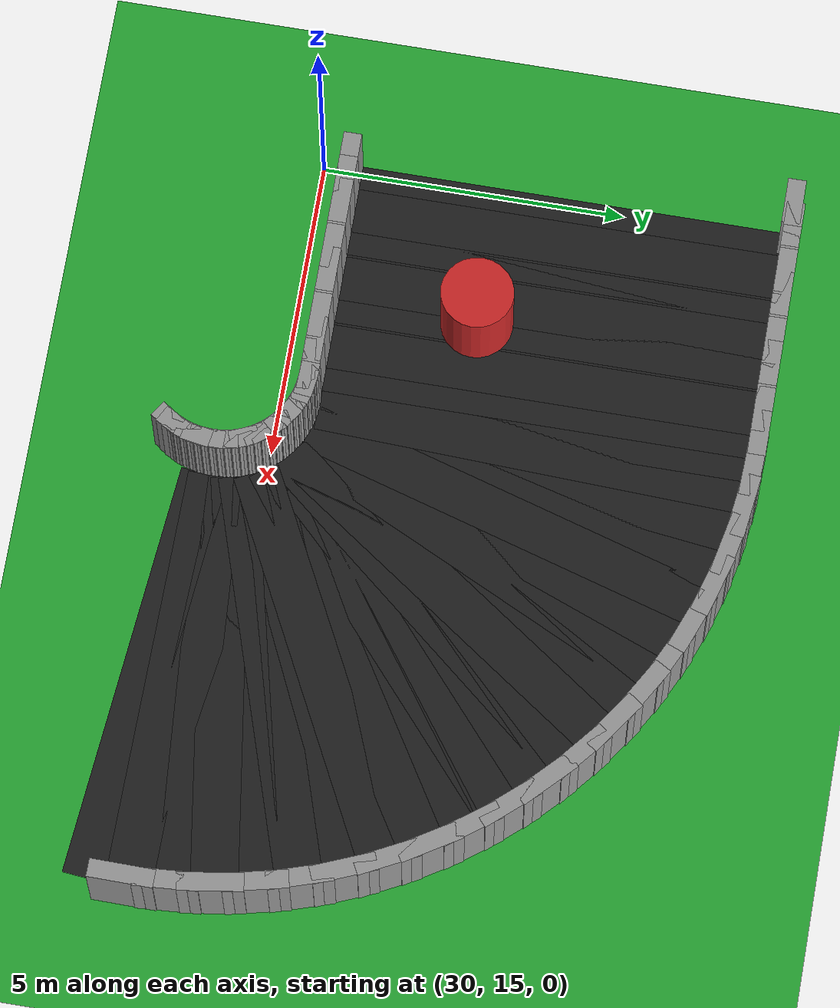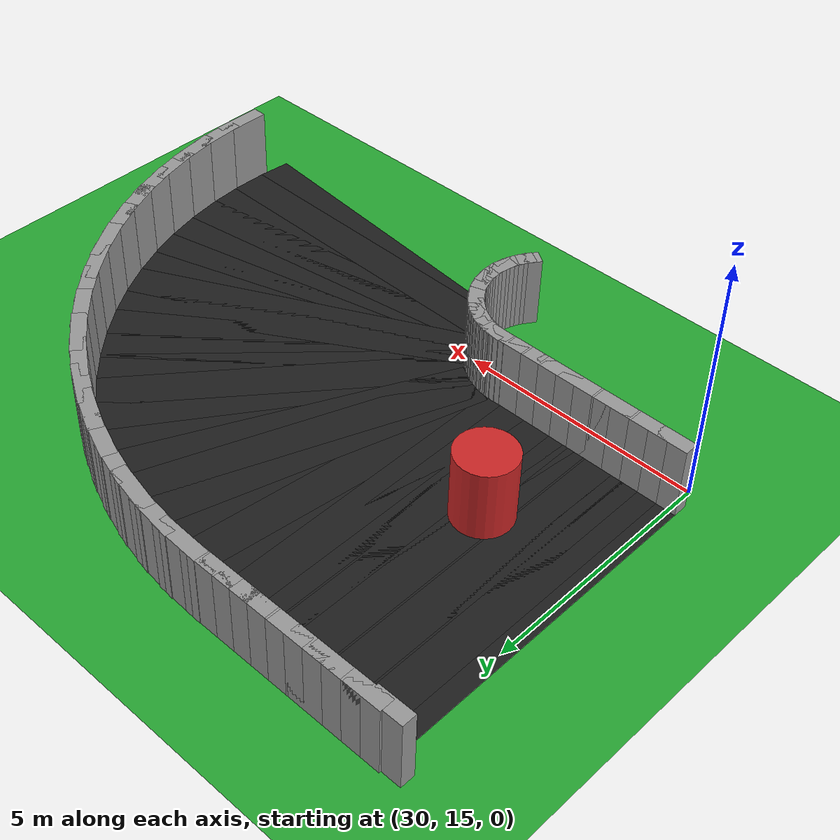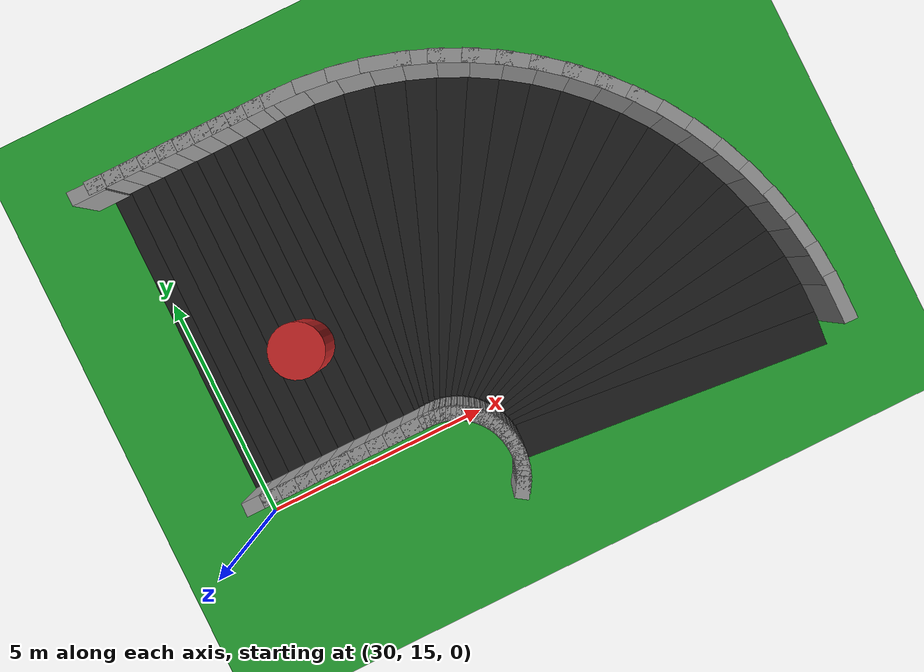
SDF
<sdf version="1.6">
 <world name="obstacle_taper">
  <include><uri>model://sun</uri></include>
  <model name="ground_plane">
   <static>true</static>
   <link name="link">
    <collision name="collision">
     <surface><friction><ode><mu>100</mu><mu2>50</mu2></ode></friction></surface>
     <geometry><plane><normal>0 0 1</normal><size>120 120</size></plane></geometry>
    </collision>
    <visual name="visual">
     <geometry><plane><normal>0 0 1</normal><size>120 120</size></plane></geometry>
     <material>
      <script><uri>file://media/materials/scripts/gazebo.material</uri><name>Gazebo/Green</name></script>
     </material>
    </visual>
   </link>
  </model>
  <model name="curbL_106">
   <static>true</static>
   <pose>35.148 13.380 0.750 0 0 0.98852</pose>
   <link name="link">
    <collision name="collision"><geometry><box><size>0.470 0.300 1.500</size></box></geometry></collision>
    <visual name="visual">
     <geometry><box><size>0.470 0.300 1.500</size></box></geometry>
     <material>
      <script><uri>file://media/materials/scripts/gazebo.material</uri><name>Gazebo/Grey</name></script>
     </material>
    </visual>
   </link>
  </model>
  <model name="curbL_107">
   <static>true</static>
   <pose>35.205 13.474 0.750 0 0 1.06977</pose>
   <link name="link">
    <collision name="collision"><geometry><box><size>0.470 0.300 1.500</size></box></geometry></collision>
    <visual name="visual">
     <geometry><box><size>0.470 0.300 1.500</size></box></geometry>
     <material>
      <script><uri>file://media/materials/scripts/gazebo.material</uri><name>Gazebo/Grey</name></script>
     </material>
    </visual>
   </link>
  </model>
  <model name="curbL_108">
   <static>true</static>
   <pose>35.253 13.572 0.750 0 0 1.15101</pose>
   <link name="link">
    <collision name="collision"><geometry><box><size>0.470 0.300 1.500</size></box></geometry></collision>
    <visual name="visual">
     <geometry><box><size>0.470 0.300 1.500</size></box></geometry>
     <material>
      <script><uri>file://media/materials/scripts/gazebo.material</uri><name>Gazebo/Grey</name></script>
     </material>
    </visual>
   </link>
  </model>
  <model name="curbL_109">
   <static>true</static>
   <pose>35.294 13.674 0.750 0 0 1.23226</pose>
   <link name="link">
    <collision name="collision"><geometry><box><size>0.470 0.300 1.500</size></box></geometry></collision>
    <visual name="visual">
     <geometry><box><size>0.470 0.300 1.500</size></box></geometry>
     <material>
      <script><uri>file://media/materials/scripts/gazebo.material</uri><name>Gazebo/Grey</name></script>
     </material>
    </visual>
   </link>
  </model>
  <model name="curbL_110">
   <static>true</static>
   <pose>35.326 13.779 0.750 0 0 1.31351</pose>
   <link name="link">
    <collision name="collision"><geometry><box><size>0.470 0.300 1.500</size></box></geometry></collision>
    <visual name="visual">
     <geometry><box><size>0.470 0.300 1.500</size></box></geometry>
     <material>
      <script><uri>file://media/materials/scripts/gazebo.material</uri><name>Gazebo/Grey</name></script>
     </material>
    </visual>
   </link>
  </model>
  <model name="curbL_111">
   <static>true</static>
   <pose>35.350 13.886 0.750 0 0 1.39476</pose>
   <link name="link">
    <collision name="collision"><geometry><box><size>0.470 0.300 1.500</size></box></geometry></collision>
    <visual name="visual">
     <geometry><box><size>0.470 0.300 1.500</size></box></geometry>
     <material>
      <script><uri>file://media/materials/scripts/gazebo.material</uri><name>Gazebo/Grey</name></script>
     </material>
    </visual>
   </link>
  </model>
  <model name="asphalt_112">
   <static>true</static>
   <pose>38.995 13.649 0.005 0 0 1.47601</pose>
   <link name="link">
    <visual name="visual">
     <geometry><box><size>0.766 7.000 0.010</size></box></geometry>
     <material>
      <script><uri>file://media/materials/scripts/gazebo.material</uri><name>Gazebo/Black</name></script>
     </material>
    </visual>
   </link>
  </model>
  <model name="curbL_112">
   <static>true</static>
   <pose>35.364 13.995 0.750 0 0 1.47601</pose>
   <link name="link">
    <collision name="collision"><geometry><box><size>0.470 0.300 1.500</size></box></geometry></collision>
    <visual name="visual">
     <geometry><box><size>0.470 0.300 1.500</size></box></geometry>
     <material>
      <script><uri>file://media/materials/scripts/gazebo.material</uri><name>Gazebo/Grey</name></script>
     </material>
    </visual>
   </link>
  </model>
  <model name="asphalt_113">
   <static>true</static>
   <pose>39.017 14.055 0.005 0 0 1.55725</pose>
   <link name="link">
    <visual name="visual">
     <geometry><box><size>0.766 7.000 0.010</size></box></geometry>
     <material>
      <script><uri>file://media/materials/scripts/gazebo.material</uri><name>Gazebo/Black</name></script>
     </material>
    </visual>
   </link>
  </model>
  <model name="curbL_113">
   <static>true</static>
   <pose>35.370 14.104 0.750 0 0 1.55725</pose>
   <link name="link">
    <collision name="collision"><geometry><box><size>0.470 0.300 1.500</size></box></geometry></collision>
    <visual name="visual">
     <geometry><box><size>0.470 0.300 1.500</size></box></geometry>
     <material>
      <script><uri>file://media/materials/scripts/gazebo.material</uri><name>Gazebo/Grey</name></script>
     </material>
    </visual>
   </link>
  </model>
  <model name="curbR_113">
   <static>true</static>
   <pose>42.664 14.005 0.750 0 0 1.55725</pose>
   <link name="link">
    <collision name="collision"><geometry><box><size>1.063 0.300 1.500</size></box></geometry></collision>
    <visual name="visual">
     <geometry><box><size>1.063 0.300 1.500</size></box></geometry>
     <material>
      <script><uri>file://media/materials/scripts/gazebo.material</uri><name>Gazebo/Grey</name></script>
     </material>
    </visual>
   </link>
  </model>
  <model name="asphalt_114">
   <static>true</static>
   <pose>39.006 14.461 0.005 0 0 1.63850</pose>
   <link name="link">
    <visual name="visual">
     <geometry><box><size>0.766 7.000 0.010</size></box></geometry>
     <material>
      <script><uri>file://media/materials/scripts/gazebo.material</uri><name>Gazebo/Black</name></script>
     </material>
    </visual>
   </link>
  </model>
  <model name="curbL_114">
   <static>true</static>
   <pose>35.367 14.214 0.750 0 0 1.63850</pose>
   <link name="link">
    <collision name="collision"><geometry><box><size>0.470 0.300 1.500</size></box></geometry></collision>
    <visual name="visual">
     <geometry><box><size>0.470 0.300 1.500</size></box></geometry>
     <material>
      <script><uri>file://media/materials/scripts/gazebo.material</uri><name>Gazebo/Grey</name></script>
     </material>
    </visual>
   </link>
  </model>
  <model name="curbR_114">
   <static>true</static>
   <pose>42.645 14.707 0.750 0 0 1.63850</pose>
   <link name="link">
    <collision name="collision"><geometry><box><size>1.063 0.300 1.500</size></box></geometry></collision>
    <visual name="visual">
     <geometry><box><size>1.063 0.300 1.500</size></box></geometry>
     <material>
      <script><uri>file://media/materials/scripts/gazebo.material</uri><name>Gazebo/Grey</name></script>
     </material>
    </visual>
   </link>
  </model>
  <model name="asphalt_115">
   <static>true</static>
   <pose>38.962 14.864 0.005 0 0 1.71975</pose>
   <link name="link">
    <visual name="visual">
     <geometry><box><size>0.766 7.000 0.010</size></box></geometry>
     <material>
      <script><uri>file://media/materials/scripts/gazebo.material</uri><name>Gazebo/Black</name></script>
     </material>
    </visual>
   </link>
  </model>
  <model name="curbL_115">
   <static>true</static>
   <pose>35.356 14.323 0.750 0 0 1.71975</pose>
   <link name="link">
    <collision name="collision"><geometry><box><size>0.470 0.300 1.500</size></box></geometry></collision>
    <visual name="visual">
     <geometry><box><size>0.470 0.300 1.500</size></box></geometry>
     <material>
      <script><uri>file://media/materials/scripts/gazebo.material</uri><name>Gazebo/Grey</name></script>
     </material>
    </visual>
   </link>
  </model>
  <model name="curbR_115">
   <static>true</static>
   <pose>42.569 15.405 0.750 0 0 1.71975</pose>
   <link name="link">
    <collision name="collision"><geometry><box><size>1.063 0.300 1.500</size></box></geometry></collision>
    <visual name="visual">
     <geometry><box><size>1.063 0.300 1.500</size></box></geometry>
     <material>
      <script><uri>file://media/materials/scripts/gazebo.material</uri><name>Gazebo/Grey</name></script>
     </material>
    </visual>
   </link>
  </model>
  <model name="asphalt_116">
   <static>true</static>
   <pose>38.886 15.263 0.005 0 0 1.80100</pose>
   <link name="link">
    <visual name="visual">
     <geometry><box><size>0.766 7.000 0.010</size></box></geometry>
     <material>
      <script><uri>file://media/materials/scripts/gazebo.material</uri><name>Gazebo/Black</name></script>
     </material>
    </visual>
   </link>
  </model>
  <model name="curbL_116">
   <static>true</static>
   <pose>35.335 14.431 0.750 0 0 1.80100</pose>
   <link name="link">
    <collision name="collision"><geometry><box><size>0.470 0.300 1.500</size></box></geometry></collision>
    <visual name="visual">
     <geometry><box><size>0.470 0.300 1.500</size></box></geometry>
     <material>
      <script><uri>file://media/materials/scripts/gazebo.material</uri><name>Gazebo/Grey</name></script>
     </material>
    </visual>
   </link>
  </model>
  <model name="curbR_116">
   <static>true</static>
   <pose>42.436 16.095 0.750 0 0 1.80100</pose>
   <link name="link">
    <collision name="collision"><geometry><box><size>1.063 0.300 1.500</size></box></geometry></collision>
    <visual name="visual">
     <geometry><box><size>1.063 0.300 1.500</size></box></geometry>
     <material>
      <script><uri>file://media/materials/scripts/gazebo.material</uri><name>Gazebo/Grey</name></script>
     </material>
    </visual>
   </link>
  </model>
  <model name="asphalt_117">
   <static>true</static>
   <pose>38.777 15.654 0.005 0 0 1.88225</pose>
   <link name="link">
    <visual name="visual">
     <geometry><box><size>0.766 7.000 0.010</size></box></geometry>
     <material>
      <script><uri>file://media/materials/scripts/gazebo.material</uri><name>Gazebo/Black</name></script>
     </material>
    </visual>
   </link>
  </model>
  <model name="curbL_117">
   <static>true</static>
   <pose>35.306 14.536 0.750 0 0 1.88225</pose>
   <link name="link">
    <collision name="collision"><geometry><box><size>0.470 0.300 1.500</size></box></geometry></collision>
    <visual name="visual">
     <geometry><box><size>0.470 0.300 1.500</size></box></geometry>
     <material>
      <script><uri>file://media/materials/scripts/gazebo.material</uri><name>Gazebo/Grey</name></script>
     </material>
    </visual>
   </link>
  </model>
  <model name="curbR_117">
   <static>true</static>
   <pose>42.249 16.771 0.750 0 0 1.88225</pose>
   <link name="link">
    <collision name="collision"><geometry><box><size>1.063 0.300 1.500</size></box></geometry></collision>
    <visual name="visual">
     <geometry><box><size>1.063 0.300 1.500</size></box></geometry>
     <material>
      <script><uri>file://media/materials/scripts/gazebo.material</uri><name>Gazebo/Grey</name></script>
     </material>
    </visual>
   </link>
  </model>
  <model name="asphalt_118">
   <static>true</static>
   <pose>38.637 16.035 0.005 0 0 1.96350</pose>
   <link name="link">
    <visual name="visual">
     <geometry><box><size>0.766 7.000 0.010</size></box></geometry>
     <material>
      <script><uri>file://media/materials/scripts/gazebo.material</uri><name>Gazebo/Black</name></script>
     </material>
    </visual>
   </link>
  </model>
  <model name="curbL_118">
   <static>true</static>
   <pose>35.268 14.639 0.750 0 0 1.96350</pose>
   <link name="link">
    <collision name="collision"><geometry><box><size>0.470 0.300 1.500</size></box></geometry></collision>
    <visual name="visual">
     <geometry><box><size>0.470 0.300 1.500</size></box></geometry>
     <material>
      <script><uri>file://media/materials/scripts/gazebo.material</uri><name>Gazebo/Grey</name></script>
     </material>
    </visual>
   </link>
  </model>
  <model name="curbR_118">
   <static>true</static>
   <pose>42.006 17.430 0.750 0 0 1.96350</pose>
   <link name="link">
    <collision name="collision"><geometry><box><size>1.063 0.300 1.500</size></box></geometry></collision>
    <visual name="visual">
     <geometry><box><size>1.063 0.300 1.500</size></box></geometry>
     <material>
      <script><uri>file://media/materials/scripts/gazebo.material</uri><name>Gazebo/Grey</name></script>
     </material>
    </visual>
   </link>
  </model>
  <model name="asphalt_119">
   <static>true</static>
   <pose>38.467 16.403 0.005 0 0 2.04474</pose>
   <link name="link">
    <visual name="visual">
     <geometry><box><size>0.766 7.000 0.010</size></box></geometry>
     <material>
      <script><uri>file://media/materials/scripts/gazebo.material</uri><name>Gazebo/Black</name></script>
     </material>
    </visual>
   </link>
  </model>
  <model name="curbL_119">
   <static>true</static>
   <pose>35.222 14.739 0.750 0 0 2.04474</pose>
   <link name="link">
    <collision name="collision"><geometry><box><size>0.470 0.300 1.500</size></box></geometry></collision>
    <visual name="visual">
     <geometry><box><size>0.470 0.300 1.500</size></box></geometry>
     <material>
      <script><uri>file://media/materials/scripts/gazebo.material</uri><name>Gazebo/Grey</name></script>
     </material>
    </visual>
   </link>
  </model>
  <model name="curbR_119">
   <static>true</static>
   <pose>41.712 18.068 0.750 0 0 2.04474</pose>
   <link name="link">
    <collision name="collision"><geometry><box><size>1.063 0.300 1.500</size></box></geometry></collision>
    <visual name="visual">
     <geometry><box><size>1.063 0.300 1.500</size></box></geometry>
     <material>
      <script><uri>file://media/materials/scripts/gazebo.material</uri><name>Gazebo/Grey</name></script>
     </material>
    </visual>
   </link>
  </model>
  <model name="asphalt_120">
   <static>true</static>
   <pose>38.267 16.757 0.005 0 0 2.12599</pose>
   <link name="link">
    <visual name="visual">
     <geometry><box><size>0.766 7.000 0.010</size></box></geometry>
     <material>
      <script><uri>file://media/materials/scripts/gazebo.material</uri><name>Gazebo/Black</name></script>
     </material>
    </visual>
   </link>
  </model>
  <model name="curbL_120">
   <static>true</static>
   <pose>35.168 14.834 0.750 0 0 2.12599</pose>
   <link name="link">
    <collision name="collision"><geometry><box><size>0.470 0.300 1.500</size></box></geometry></collision>
    <visual name="visual">
     <geometry><box><size>0.470 0.300 1.500</size></box></geometry>
     <material>
      <script><uri>file://media/materials/scripts/gazebo.material</uri><name>Gazebo/Grey</name></script>
     </material>
    </visual>
   </link>
  </model>
  <model name="curbR_120">
   <static>true</static>
   <pose>41.366 18.679 0.750 0 0 2.12599</pose>
   <link name="link">
    <collision name="collision"><geometry><box><size>1.063 0.300 1.500</size></box></geometry></collision>
    <visual name="visual">
     <geometry><box><size>1.063 0.300 1.500</size></box></geometry>
     <material>
      <script><uri>file://media/materials/scripts/gazebo.material</uri><name>Gazebo/Grey</name></script>
     </material>
    </visual>
   </link>
  </model>
  <model name="asphalt_121">
   <static>true</static>
   <pose>38.039 17.093 0.005 0 0 2.20724</pose>
   <link name="link">
    <visual name="visual">
     <geometry><box><size>0.766 7.000 0.010</size></box></geometry>
     <material>
      <script><uri>file://media/materials/scripts/gazebo.material</uri><name>Gazebo/Black</name></script>
     </material>
    </visual>
   </link>
  </model>
  <model name="curbL_121">
   <static>true</static>
   <pose>35.106 14.925 0.750 0 0 2.20724</pose>
   <link name="link">
    <collision name="collision"><geometry><box><size>0.470 0.300 1.500</size></box></geometry></collision>
    <visual name="visual">
     <geometry><box><size>0.470 0.300 1.500</size></box></geometry>
     <material>
      <script><uri>file://media/materials/scripts/gazebo.material</uri><name>Gazebo/Grey</name></script>
     </material>
    </visual>
   </link>
  </model>
  <model name="curbR_121">
   <static>true</static>
   <pose>40.972 19.260 0.750 0 0 2.20724</pose>
   <link name="link">
    <collision name="collision"><geometry><box><size>1.063 0.300 1.500</size></box></geometry></collision>
    <visual name="visual">
     <geometry><box><size>1.063 0.300 1.500</size></box></geometry>
     <material>
      <script><uri>file://media/materials/scripts/gazebo.material</uri><name>Gazebo/Grey</name></script>
     </material>
    </visual>
   </link>
  </model>
  <model name="asphalt_122">
   <static>true</static>
   <pose>37.785 17.409 0.005 0 0 2.28849</pose>
   <link name="link">
    <visual name="visual">
     <geometry><box><size>0.766 7.000 0.010</size></box></geometry>
     <material>
      <script><uri>file://media/materials/scripts/gazebo.material</uri><name>Gazebo/Black</name></script>
     </material>
    </visual>
   </link>
  </model>
  <model name="curbL_122">
   <static>true</static>
   <pose>35.037 15.010 0.750 0 0 2.28849</pose>
   <link name="link">
    <collision name="collision"><geometry><box><size>0.470 0.300 1.500</size></box></geometry></collision>
    <visual name="visual">
     <geometry><box><size>0.470 0.300 1.500</size></box></geometry>
     <material>
      <script><uri>file://media/materials/scripts/gazebo.material</uri><name>Gazebo/Grey</name></script>
     </material>
    </visual>
   </link>
  </model>
  <model name="curbR_122">
   <static>true</static>
   <pose>40.532 19.807 0.750 0 0 2.28849</pose>
   <link name="link">
    <collision name="collision"><geometry><box><size>1.063 0.300 1.500</size></box></geometry></collision>
    <visual name="visual">
     <geometry><box><size>1.063 0.300 1.500</size></box></geometry>
     <material>
      <script><uri>file://media/materials/scripts/gazebo.material</uri><name>Gazebo/Grey</name></script>
     </material>
    </visual>
   </link>
  </model>
  <model name="asphalt_123">
   <static>true</static>
   <pose>37.506 17.704 0.005 0 0 2.36974</pose>
   <link name="link">
    <visual name="visual">
     <geometry><box><size>0.766 7.000 0.010</size></box></geometry>
     <material>
      <script><uri>file://media/materials/scripts/gazebo.material</uri><name>Gazebo/Black</name></script>
     </material>
    </visual>
   </link>
  </model>
  <model name="curbL_123">
   <static>true</static>
   <pose>34.962 15.090 0.750 0 0 2.36974</pose>
   <link name="link">
    <collision name="collision"><geometry><box><size>0.470 0.300 1.500</size></box></geometry></collision>
    <visual name="visual">
     <geometry><box><size>0.470 0.300 1.500</size></box></geometry>
     <material>
      <script><uri>file://media/materials/scripts/gazebo.material</uri><name>Gazebo/Grey</name></script>
     </material>
    </visual>
   </link>
  </model>
  <model name="curbR_123">
   <static>true</static>
   <pose>40.049 20.317 0.750 0 0 2.36974</pose>
   <link name="link">
    <collision name="collision"><geometry><box><size>1.063 0.300 1.500</size></box></geometry></collision>
    <visual name="visual">
     <geometry><box><size>1.063 0.300 1.500</size></box></geometry>
     <material>
      <script><uri>file://media/materials/scripts/gazebo.material</uri><name>Gazebo/Grey</name></script>
     </material>
    </visual>
   </link>
  </model>
  <model name="asphalt_124">
   <static>true</static>
   <pose>37.204 17.975 0.005 0 0 2.45098</pose>
   <link name="link">
    <visual name="visual">
     <geometry><box><size>0.766 7.000 0.010</size></box></geometry>
     <material>
      <script><uri>file://media/materials/scripts/gazebo.material</uri><name>Gazebo/Black</name></script>
     </material>
    </visual>
   </link>
  </model>
  <model name="curbL_124">
   <static>true</static>
   <pose>34.880 15.163 0.750 0 0 2.45098</pose>
   <link name="link">
    <collision name="collision"><geometry><box><size>0.470 0.300 1.500</size></box></geometry></collision>
    <visual name="visual">
     <geometry><box><size>0.470 0.300 1.500</size></box></geometry>
     <material>
      <script><uri>file://media/materials/scripts/gazebo.material</uri><name>Gazebo/Grey</name></script>
     </material>
    </visual>
   </link>
  </model>
  <model name="curbR_124">
   <static>true</static>
   <pose>39.527 20.786 0.750 0 0 2.45098</pose>
   <link name="link">
    <collision name="collision"><geometry><box><size>1.063 0.300 1.500</size></box></geometry></collision>
    <visual name="visual">
     <geometry><box><size>1.063 0.300 1.500</size></box></geometry>
     <material>
      <script><uri>file://media/materials/scripts/gazebo.material</uri><name>Gazebo/Grey</name></script>
     </material>
    </visual>
   </link>
  </model>
  <model name="asphalt_125">
   <static>true</static>
   <pose>36.880 18.220 0.005 0 0 2.53223</pose>
   <link name="link">
    <visual name="visual">
     <geometry><box><size>0.766 7.000 0.010</size></box></geometry>
     <material>
      <script><uri>file://media/materials/scripts/gazebo.material</uri><name>Gazebo/Black</name></script>
     </material>
    </visual>
   </link>
  </model>
  <model name="curbL_125">
   <static>true</static>
   <pose>34.793 15.230 0.750 0 0 2.53223</pose>
   <link name="link">
    <collision name="collision"><geometry><box><size>0.470 0.300 1.500</size></box></geometry></collision>
    <visual name="visual">
     <geometry><box><size>0.470 0.300 1.500</size></box></geometry>
     <material>
      <script><uri>file://media/materials/scripts/gazebo.material</uri><name>Gazebo/Grey</name></script>
     </material>
    </visual>
   </link>
  </model>
  <model name="curbR_125">
   <static>true</static>
   <pose>38.968 21.211 0.750 0 0 2.53223</pose>
   <link name="link">
    <collision name="collision"><geometry><box><size>1.063 0.300 1.500</size></box></geometry></collision>
    <visual name="visual">
     <geometry><box><size>1.063 0.300 1.500</size></box></geometry>
     <material>
      <script><uri>file://media/materials/scripts/gazebo.material</uri><name>Gazebo/Grey</name></script>
     </material>
    </visual>
   </link>
  </model>
  <model name="asphalt_126">
   <static>true</static>
   <pose>36.538 18.439 0.005 0 0 2.61348</pose>
   <link name="link">
    <visual name="visual">
     <geometry><box><size>0.766 7.000 0.010</size></box></geometry>
     <material>
      <script><uri>file://media/materials/scripts/gazebo.material</uri><name>Gazebo/Black</name></script>
     </material>
    </visual>
   </link>
  </model>
  <model name="curbL_126">
   <static>true</static>
   <pose>34.701 15.289 0.750 0 0 2.61348</pose>
   <link name="link">
    <collision name="collision"><geometry><box><size>0.470 0.300 1.500</size></box></geometry></collision>
    <visual name="visual">
     <geometry><box><size>0.470 0.300 1.500</size></box></geometry>
     <material>
      <script><uri>file://media/materials/scripts/gazebo.material</uri><name>Gazebo/Grey</name></script>
     </material>
    </visual>
   </link>
  </model>
  <model name="curbR_126">
   <static>true</static>
   <pose>38.376 21.589 0.750 0 0 2.61348</pose>
   <link name="link">
    <collision name="collision"><geometry><box><size>1.063 0.300 1.500</size></box></geometry></collision>
    <visual name="visual">
     <geometry><box><size>1.063 0.300 1.500</size></box></geometry>
     <material>
      <script><uri>file://media/materials/scripts/gazebo.material</uri><name>Gazebo/Grey</name></script>
     </material>
    </visual>
   </link>
  </model>
  <model name="asphalt_127">
   <static>true</static>
   <pose>36.180 18.629 0.005 0 0 2.69473</pose>
   <link name="link">
    <visual name="visual">
     <geometry><box><size>0.766 7.000 0.010</size></box></geometry>
     <material>
      <script><uri>file://media/materials/scripts/gazebo.material</uri><name>Gazebo/Black</name></script>
     </material>
    </visual>
   </link>
  </model>
  <model name="curbL_127">
   <static>true</static>
   <pose>34.604 15.340 0.750 0 0 2.69473</pose>
   <link name="link">
    <collision name="collision"><geometry><box><size>0.470 0.300 1.500</size></box></geometry></collision>
    <visual name="visual">
     <geometry><box><size>0.470 0.300 1.500</size></box></geometry>
     <material>
      <script><uri>file://media/materials/scripts/gazebo.material</uri><name>Gazebo/Grey</name></script>
     </material>
    </visual>
   </link>
  </model>
  <model name="curbR_127">
   <static>true</static>
   <pose>37.756 21.918 0.750 0 0 2.69473</pose>
   <link name="link">
    <collision name="collision"><geometry><box><size>1.063 0.300 1.500</size></box></geometry></collision>
    <visual name="visual">
     <geometry><box><size>1.063 0.300 1.500</size></box></geometry>
     <material>
      <script><uri>file://media/materials/scripts/gazebo.material</uri><name>Gazebo/Grey</name></script>
     </material>
    </visual>
   </link>
  </model>
  <model name="asphalt_128">
   <static>true</static>
   <pose>35.807 18.789 0.005 0 0 2.77598</pose>
   <link name="link">
    <visual name="visual">
     <geometry><box><size>0.766 7.000 0.010</size></box></geometry>
     <material>
      <script><uri>file://media/materials/scripts/gazebo.material</uri><name>Gazebo/Black</name></script>
     </material>
    </visual>
   </link>
  </model>
  <model name="curbL_128">
   <static>true</static>
   <pose>34.503 15.383 0.750 0 0 2.77598</pose>
   <link name="link">
    <collision name="collision"><geometry><box><size>0.470 0.300 1.500</size></box></geometry></collision>
    <visual name="visual">
     <geometry><box><size>0.470 0.300 1.500</size></box></geometry>
     <material>
      <script><uri>file://media/materials/scripts/gazebo.material</uri><name>Gazebo/Grey</name></script>
     </material>
    </visual>
   </link>
  </model>
  <model name="curbR_128">
   <static>true</static>
   <pose>37.111 22.195 0.750 0 0 2.77598</pose>
   <link name="link">
    <collision name="collision"><geometry><box><size>1.063 0.300 1.500</size></box></geometry></collision>
    <visual name="visual">
     <geometry><box><size>1.063 0.300 1.500</size></box></geometry>
     <material>
      <script><uri>file://media/materials/scripts/gazebo.material</uri><name>Gazebo/Grey</name></script>
     </material>
    </visual>
   </link>
  </model>
  <model name="asphalt_129">
   <static>true</static>
   <pose>35.422 18.919 0.005 0 0 2.85722</pose>
   <link name="link">
    <visual name="visual">
     <geometry><box><size>0.766 7.000 0.010</size></box></geometry>
     <material>
      <script><uri>file://media/materials/scripts/gazebo.material</uri><name>Gazebo/Black</name></script>
     </material>
    </visual>
   </link>
  </model>
  <model name="curbL_129">
   <static>true</static>
   <pose>34.399 15.418 0.750 0 0 2.85722</pose>
   <link name="link">
    <collision name="collision"><geometry><box><size>0.470 0.300 1.500</size></box></geometry></collision>
    <visual name="visual">
     <geometry><box><size>0.470 0.300 1.500</size></box></geometry>
     <material>
      <script><uri>file://media/materials/scripts/gazebo.material</uri><name>Gazebo/Grey</name></script>
     </material>
    </visual>
   </link>
  </model>
  <model name="curbR_129">
   <static>true</static>
   <pose>36.445 22.420 0.750 0 0 2.85722</pose>
   <link name="link">
    <collision name="collision"><geometry><box><size>1.063 0.300 1.500</size></box></geometry></collision>
    <visual name="visual">
     <geometry><box><size>1.063 0.300 1.500</size></box></geometry>
     <material>
      <script><uri>file://media/materials/scripts/gazebo.material</uri><name>Gazebo/Grey</name></script>
     </material>
    </visual>
   </link>
  </model>
  <model name="asphalt_130">
   <static>true</static>
   <pose>35.028 19.017 0.005 0 0 2.93847</pose>
   <link name="link">
    <visual name="visual">
     <geometry><box><size>0.766 7.000 0.010</size></box></geometry>
     <material>
      <script><uri>file://media/materials/scripts/gazebo.material</uri><name>Gazebo/Black</name></script>
     </material>
    </visual>
   </link>
  </model>
  <model name="curbL_130">
   <static>true</static>
   <pose>34.293 15.445 0.750 0 0 2.93847</pose>
   <link name="link">
    <collision name="collision"><geometry><box><size>0.470 0.300 1.500</size></box></geometry></collision>
    <visual name="visual">
     <geometry><box><size>0.470 0.300 1.500</size></box></geometry>
     <material>
      <script><uri>file://media/materials/scripts/gazebo.material</uri><name>Gazebo/Grey</name></script>
     </material>
    </visual>
   </link>
  </model>
  <model name="curbR_130">
   <static>true</static>
   <pose>35.764 22.589 0.750 0 0 2.93847</pose>
   <link name="link">
    <collision name="collision"><geometry><box><size>1.063 0.300 1.500</size></box></geometry></collision>
    <visual name="visual">
     <geometry><box><size>1.063 0.300 1.500</size></box></geometry>
     <material>
      <script><uri>file://media/materials/scripts/gazebo.material</uri><name>Gazebo/Grey</name></script>
     </material>
    </visual>
   </link>
  </model>
  <model name="asphalt_131">
   <static>true</static>
   <pose>34.628 19.083 0.005 0 0 3.01972</pose>
   <link name="link">
    <visual name="visual">
     <geometry><box><size>0.766 7.000 0.010</size></box></geometry>
     <material>
      <script><uri>file://media/materials/scripts/gazebo.material</uri><name>Gazebo/Black</name></script>
     </material>
    </visual>
   </link>
  </model>
  <model name="curbL_131">
   <static>true</static>
   <pose>34.184 15.463 0.750 0 0 3.01972</pose>
   <link name="link">
    <collision name="collision"><geometry><box><size>0.470 0.300 1.500</size></box></geometry></collision>
    <visual name="visual">
     <geometry><box><size>0.470 0.300 1.500</size></box></geometry>
     <material>
      <script><uri>file://media/materials/scripts/gazebo.material</uri><name>Gazebo/Grey</name></script>
     </material>
    </visual>
   </link>
  </model>
  <model name="curbR_131">
   <static>true</static>
   <pose>35.071 22.703 0.750 0 0 3.01972</pose>
   <link name="link">
    <collision name="collision"><geometry><box><size>1.063 0.300 1.500</size></box></geometry></collision>
    <visual name="visual">
     <geometry><box><size>1.063 0.300 1.500</size></box></geometry>
     <material>
      <script><uri>file://media/materials/scripts/gazebo.material</uri><name>Gazebo/Grey</name></script>
     </material>
    </visual>
   </link>
  </model>
  <model name="asphalt_132">
   <static>true</static>
   <pose>34.223 19.116 0.005 0 0 3.10097</pose>
   <link name="link">
    <visual name="visual">
     <geometry><box><size>0.766 7.000 0.010</size></box></geometry>
     <material>
      <script><uri>file://media/materials/scripts/gazebo.material</uri><name>Gazebo/Black</name></script>
     </material>
    </visual>
   </link>
  </model>
  <model name="curbL_132">
   <static>true</static>
   <pose>34.075 15.472 0.750 0 0 3.10097</pose>
   <link name="link">
    <collision name="collision"><geometry><box><size>0.470 0.300 1.500</size></box></geometry></collision>
    <visual name="visual">
     <geometry><box><size>0.470 0.300 1.500</size></box></geometry>
     <material>
      <script><uri>file://media/materials/scripts/gazebo.material</uri><name>Gazebo/Grey</name></script>
     </material>
    </visual>
   </link>
  </model>
  <model name="curbR_132">
   <static>true</static>
   <pose>34.371 22.760 0.750 0 0 3.10097</pose>
   <link name="link">
    <collision name="collision"><geometry><box><size>1.063 0.300 1.500</size></box></geometry></collision>
    <visual name="visual">
     <geometry><box><size>1.063 0.300 1.500</size></box></geometry>
     <material>
      <script><uri>file://media/materials/scripts/gazebo.material</uri><name>Gazebo/Grey</name></script>
     </material>
    </visual>
   </link>
  </model>
  <model name="asphalt_133">
   <static>true</static>
   <pose>33.820 19.124 0.005 0 0 3.14159</pose>
   <link name="link">
    <visual name="visual">
     <geometry><box><size>0.760 7.000 0.010</size></box></geometry>
     <material>
      <script><uri>file://media/materials/scripts/gazebo.material</uri><name>Gazebo/Black</name></script>
     </material>
    </visual>
   </link>
  </model>
  <model name="curbL_133">
   <static>true</static>
   <pose>33.820 15.474 0.750 0 0 3.14159</pose>
   <link name="link">
    <collision name="collision"><geometry><box><size>0.760 0.300 1.500</size></box></geometry></collision>
    <visual name="visual">
     <geometry><box><size>0.760 0.300 1.500</size></box></geometry>
     <material>
      <script><uri>file://media/materials/scripts/gazebo.material</uri><name>Gazebo/Grey</name></script>
     </material>
    </visual>
   </link>
  </model>
  <model name="curbR_133">
   <static>true</static>
   <pose>33.820 22.774 0.750 0 0 3.14159</pose>
   <link name="link">
    <collision name="collision"><geometry><box><size>0.760 0.300 1.500</size></box></geometry></collision>
    <visual name="visual">
     <geometry><box><size>0.760 0.300 1.500</size></box></geometry>
     <material>
      <script><uri>file://media/materials/scripts/gazebo.material</uri><name>Gazebo/Grey</name></script>
     </material>
    </visual>
   </link>
  </model>
  <model name="asphalt_134">
   <static>true</static>
   <pose>33.420 19.124 0.005 0 0 3.14159</pose>
   <link name="link">
    <visual name="visual">
     <geometry><box><size>0.760 7.000 0.010</size></box></geometry>
     <material>
      <script><uri>file://media/materials/scripts/gazebo.material</uri><name>Gazebo/Black</name></script>
     </material>
    </visual>
   </link>
  </model>
  <model name="curbL_134">
   <static>true</static>
   <pose>33.420 15.474 0.750 0 0 3.14159</pose>
   <link name="link">
    <collision name="collision"><geometry><box><size>0.760 0.300 1.500</size></box></geometry></collision>
    <visual name="visual">
     <geometry><box><size>0.760 0.300 1.500</size></box></geometry>
     <material>
      <script><uri>file://media/materials/scripts/gazebo.material</uri><name>Gazebo/Grey</name></script>
     </material>
    </visual>
   </link>
  </model>
  <model name="curbR_134">
   <static>true</static>
   <pose>33.420 22.774 0.750 0 0 3.14159</pose>
   <link name="link">
    <collision name="collision"><geometry><box><size>0.760 0.300 1.500</size></box></geometry></collision>
    <visual name="visual">
     <geometry><box><size>0.760 0.300 1.500</size></box></geometry>
     <material>
      <script><uri>file://media/materials/scripts/gazebo.material</uri><name>Gazebo/Grey</name></script>
     </material>
    </visual>
   </link>
  </model>
  <model name="asphalt_135">
   <static>true</static>
   <pose>33.020 19.124 0.005 0 0 3.14159</pose>
   <link name="link">
    <visual name="visual">
     <geometry><box><size>0.760 7.000 0.010</size></box></geometry>
     <material>
      <script><uri>file://media/materials/scripts/gazebo.material</uri><name>Gazebo/Black</name></script>
     </material>
    </visual>
   </link>
  </model>
  <model name="curbL_135">
   <static>true</static>
   <pose>33.020 15.474 0.750 0 0 3.14159</pose>
   <link name="link">
    <collision name="collision"><geometry><box><size>0.760 0.300 1.500</size></box></geometry></collision>
    <visual name="visual">
     <geometry><box><size>0.760 0.300 1.500</size></box></geometry>
     <material>
      <script><uri>file://media/materials/scripts/gazebo.material</uri><name>Gazebo/Grey</name></script>
     </material>
    </visual>
   </link>
  </model>
  <model name="curbR_135">
   <static>true</static>
   <pose>33.020 22.774 0.750 0 0 3.14159</pose>
   <link name="link">
    <collision name="collision"><geometry><box><size>0.760 0.300 1.500</size></box></geometry></collision>
    <visual name="visual">
     <geometry><box><size>0.760 0.300 1.500</size></box></geometry>
     <material>
      <script><uri>file://media/materials/scripts/gazebo.material</uri><name>Gazebo/Grey</name></script>
     </material>
    </visual>
   </link>
  </model>
  <model name="asphalt_136">
   <static>true</static>
   <pose>32.620 19.124 0.005 0 0 3.14159</pose>
   <link name="link">
    <visual name="visual">
     <geometry><box><size>0.760 7.000 0.010</size></box></geometry>
     <material>
      <script><uri>file://media/materials/scripts/gazebo.material</uri><name>Gazebo/Black</name></script>
     </material>
    </visual>
   </link>
  </model>
  <model name="curbL_136">
   <static>true</static>
   <pose>32.620 15.474 0.750 0 0 3.14159</pose>
   <link name="link">
    <collision name="collision"><geometry><box><size>0.760 0.300 1.500</size></box></geometry></collision>
    <visual name="visual">
     <geometry><box><size>0.760 0.300 1.500</size></box></geometry>
     <material>
      <script><uri>file://media/materials/scripts/gazebo.material</uri><name>Gazebo/Grey</name></script>
     </material>
    </visual>
   </link>
  </model>
  <model name="curbR_136">
   <static>true</static>
   <pose>32.620 22.774 0.750 0 0 3.14159</pose>
   <link name="link">
    <collision name="collision"><geometry><box><size>0.760 0.300 1.500</size></box></geometry></collision>
    <visual name="visual">
     <geometry><box><size>0.760 0.300 1.500</size></box></geometry>
     <material>
      <script><uri>file://media/materials/scripts/gazebo.material</uri><name>Gazebo/Grey</name></script>
     </material>
    </visual>
   </link>
  </model>
  <model name="asphalt_137">
   <static>true</static>
   <pose>32.220 19.124 0.005 0 0 3.14159</pose>
   <link name="link">
    <visual name="visual">
     <geometry><box><size>0.760 7.000 0.010</size></box></geometry>
     <material>
      <script><uri>file://media/materials/scripts/gazebo.material</uri><name>Gazebo/Black</name></script>
     </material>
    </visual>
   </link>
  </model>
  <model name="curbL_137">
   <static>true</static>
   <pose>32.220 15.474 0.750 0 0 3.14159</pose>
   <link name="link">
    <collision name="collision"><geometry><box><size>0.760 0.300 1.500</size></box></geometry></collision>
    <visual name="visual">
     <geometry><box><size>0.760 0.300 1.500</size></box></geometry>
     <material>
      <script><uri>file://media/materials/scripts/gazebo.material</uri><name>Gazebo/Grey</name></script>
     </material>
    </visual>
   </link>
  </model>
  <model name="curbR_137">
   <static>true</static>
   <pose>32.220 22.774 0.750 0 0 3.14159</pose>
   <link name="link">
    <collision name="collision"><geometry><box><size>0.760 0.300 1.500</size></box></geometry></collision>
    <visual name="visual">
     <geometry><box><size>0.760 0.300 1.500</size></box></geometry>
     <material>
      <script><uri>file://media/materials/scripts/gazebo.material</uri><name>Gazebo/Grey</name></script>
     </material>
    </visual>
   </link>
  </model>
  <model name="asphalt_138">
   <static>true</static>
   <pose>31.820 19.124 0.005 0 0 3.14159</pose>
   <link name="link">
    <visual name="visual">
     <geometry><box><size>0.760 7.000 0.010</size></box></geometry>
     <material>
      <script><uri>file://media/materials/scripts/gazebo.material</uri><name>Gazebo/Black</name></script>
     </material>
    </visual>
   </link>
  </model>
  <model name="curbL_138">
   <static>true</static>
   <pose>31.820 15.474 0.750 0 0 3.14159</pose>
   <link name="link">
    <collision name="collision"><geometry><box><size>0.760 0.300 1.500</size></box></geometry></collision>
    <visual name="visual">
     <geometry><box><size>0.760 0.300 1.500</size></box></geometry>
     <material>
      <script><uri>file://media/materials/scripts/gazebo.material</uri><name>Gazebo/Grey</name></script>
     </material>
    </visual>
   </link>
  </model>
  <model name="curbR_138">
   <static>true</static>
   <pose>31.820 22.774 0.750 0 0 3.14159</pose>
   <link name="link">
    <collision name="collision"><geometry><box><size>0.760 0.300 1.500</size></box></geometry></collision>
    <visual name="visual">
     <geometry><box><size>0.760 0.300 1.500</size></box></geometry>
     <material>
      <script><uri>file://media/materials/scripts/gazebo.material</uri><name>Gazebo/Grey</name></script>
     </material>
    </visual>
   </link>
  </model>
  <model name="asphalt_139">
   <static>true</static>
   <pose>31.420 19.124 0.005 0 0 3.14159</pose>
   <link name="link">
    <visual name="visual">
     <geometry><box><size>0.760 7.000 0.010</size></box></geometry>
     <material>
      <script><uri>file://media/materials/scripts/gazebo.material</uri><name>Gazebo/Black</name></script>
     </material>
    </visual>
   </link>
  </model>
  <model name="curbL_139">
   <static>true</static>
   <pose>31.420 15.474 0.750 0 0 3.14159</pose>
   <link name="link">
    <collision name="collision"><geometry><box><size>0.760 0.300 1.500</size></box></geometry></collision>
    <visual name="visual">
     <geometry><box><size>0.760 0.300 1.500</size></box></geometry>
     <material>
      <script><uri>file://media/materials/scripts/gazebo.material</uri><name>Gazebo/Grey</name></script>
     </material>
    </visual>
   </link>
  </model>
  <model name="curbR_139">
   <static>true</static>
   <pose>31.420 22.774 0.750 0 0 3.14159</pose>
   <link name="link">
    <collision name="collision"><geometry><box><size>0.760 0.300 1.500</size></box></geometry></collision>
    <visual name="visual">
     <geometry><box><size>0.760 0.300 1.500</size></box></geometry>
     <material>
      <script><uri>file://media/materials/scripts/gazebo.material</uri><name>Gazebo/Grey</name></script>
     </material>
    </visual>
   </link>
  </model>
  <model name="asphalt_140">
   <static>true</static>
   <pose>31.020 19.124 0.005 0 0 3.14159</pose>
   <link name="link">
    <visual name="visual">
     <geometry><box><size>0.760 7.000 0.010</size></box></geometry>
     <material>
      <script><uri>file://media/materials/scripts/gazebo.material</uri><name>Gazebo/Black</name></script>
     </material>
    </visual>
   </link>
  </model>
  <model name="curbL_140">
   <static>true</static>
   <pose>31.020 15.474 0.750 0 0 3.14159</pose>
   <link name="link">
    <collision name="collision"><geometry><box><size>0.760 0.300 1.500</size></box></geometry></collision>
    <visual name="visual">
     <geometry><box><size>0.760 0.300 1.500</size></box></geometry>
     <material>
      <script><uri>file://media/materials/scripts/gazebo.material</uri><name>Gazebo/Grey</name></script>
     </material>
    </visual>
   </link>
  </model>
  <model name="curbR_140">
   <static>true</static>
   <pose>31.020 22.774 0.750 0 0 3.14159</pose>
   <link name="link">
    <collision name="collision"><geometry><box><size>0.760 0.300 1.500</size></box></geometry></collision>
    <visual name="visual">
     <geometry><box><size>0.760 0.300 1.500</size></box></geometry>
     <material>
      <script><uri>file://media/materials/scripts/gazebo.material</uri><name>Gazebo/Grey</name></script>
     </material>
    </visual>
   </link>
  </model>
  <model name="asphalt_141">
   <static>true</static>
   <pose>30.620 19.124 0.005 0 0 3.14159</pose>
   <link name="link">
    <visual name="visual">
     <geometry><box><size>0.760 7.000 0.010</size></box></geometry>
     <material>
      <script><uri>file://media/materials/scripts/gazebo.material</uri><name>Gazebo/Black</name></script>
     </material>
    </visual>
   </link>
  </model>
  <model name="curbL_141">
   <static>true</static>
   <pose>30.620 15.474 0.750 0 0 3.14159</pose>
   <link name="link">
    <collision name="collision"><geometry><box><size>0.760 0.300 1.500</size></box></geometry></collision>
    <visual name="visual">
     <geometry><box><size>0.760 0.300 1.500</size></box></geometry>
     <material>
      <script><uri>file://media/materials/scripts/gazebo.material</uri><name>Gazebo/Grey</name></script>
     </material>
    </visual>
   </link>
  </model>
  <model name="curbR_141">
   <static>true</static>
   <pose>30.620 22.774 0.750 0 0 3.14159</pose>
   <link name="link">
    <collision name="collision"><geometry><box><size>0.760 0.300 1.500</size></box></geometry></collision>
    <visual name="visual">
     <geometry><box><size>0.760 0.300 1.500</size></box></geometry>
     <material>
      <script><uri>file://media/materials/scripts/gazebo.material</uri><name>Gazebo/Grey</name></script>
     </material>
    </visual>
   </link>
  </model>
  <model name="asphalt_142">
   <static>true</static>
   <pose>30.220 19.124 0.005 0 0 3.14159</pose>
   <link name="link">
    <visual name="visual">
     <geometry><box><size>0.760 7.000 0.010</size></box></geometry>
     <material>
      <script><uri>file://media/materials/scripts/gazebo.material</uri><name>Gazebo/Black</name></script>
     </material>
    </visual>
   </link>
  </model>
  <model name="curbL_142">
   <static>true</static>
   <pose>30.220 15.474 0.750 0 0 3.14159</pose>
   <link name="link">
    <collision name="collision"><geometry><box><size>0.760 0.300 1.500</size></box></geometry></collision>
    <visual name="visual">
     <geometry><box><size>0.760 0.300 1.500</size></box></geometry>
     <material>
      <script><uri>file://media/materials/scripts/gazebo.material</uri><name>Gazebo/Grey</name></script>
     </material>
    </visual>
   </link>
  </model>
  <model name="curbR_142">
   <static>true</static>
   <pose>30.220 22.774 0.750 0 0 3.14159</pose>
   <link name="link">
    <collision name="collision"><geometry><box><size>0.760 0.300 1.500</size></box></geometry></collision>
    <visual name="visual">
     <geometry><box><size>0.760 0.300 1.500</size></box></geometry>
     <material>
      <script><uri>file://media/materials/scripts/gazebo.material</uri><name>Gazebo/Grey</name></script>
     </material>
    </visual>
   </link>
  </model>
  <model name="curbR_143">
   <static>true</static>
   <pose>29.820 22.735 0.750 0 0 3.14159</pose>
   <link name="link">
    <collision name="collision"><geometry><box><size>0.760 0.300 1.500</size></box></geometry></collision>
    <visual name="visual">
     <geometry><box><size>0.760 0.300 1.500</size></box></geometry>
     <material>
      <script><uri>file://media/materials/scripts/gazebo.material</uri><name>Gazebo/Grey</name></script>
     </material>
    </visual>
   </link>
  </model>
  <model name="obs_3">
   <static>true</static>
   <pose>32.226 17.924 0.750 0 0 0</pose>
   <link name="link">
    <collision name="collision">
     <geometry><cylinder><radius>0.600</radius><length>1.500</length></cylinder></geometry>
    </collision>
    <visual name="visual">
     <geometry><cylinder><radius>0.600</radius><length>1.500</length></cylinder></geometry>
     <material>
      <script><uri>file://media/materials/scripts/gazebo.material</uri><name>Gazebo/Red</name></script>
     </material>
    </visual>
   </link>
  </model>
 </world>
</sdf>
